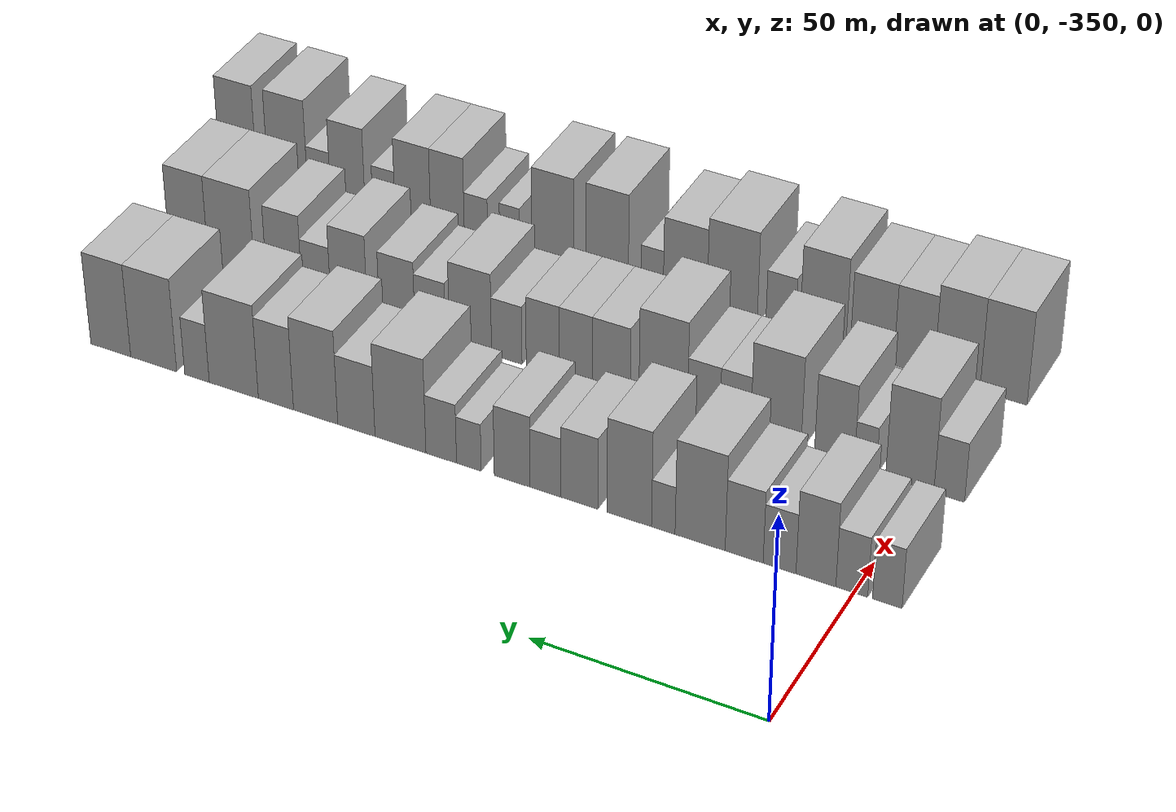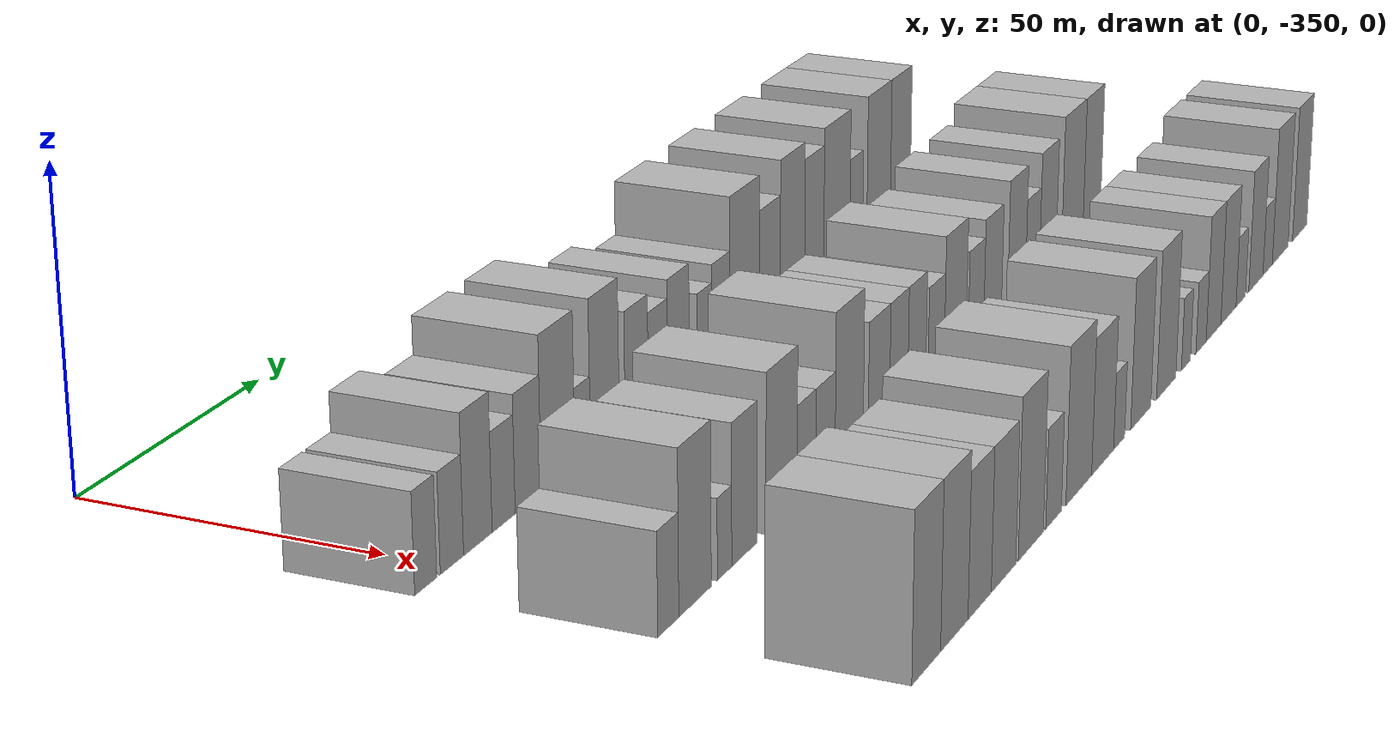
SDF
<sdf version="1.6">
 <world name="default">
  <model name="building_1">
   <static>1</static>
   <pose>50.0000 -356.9173 0 0.000000 0.000000 0.000000</pose>
   <link name="link">
    <pose>0 0 7.50 0 0 0</pose>
    <collision name="collision"><geometry><box><size>20.0000 6.1653 15.0000</size></box></geometry></collision>
    <visual name="visual">
     <cast_shadows>0</cast_shadows>
     <geometry><box><size>20.0000 6.1653 15.0000</size></box></geometry>
     <material>
      <script>
       <uri>model://HANNAS_wall/materials/scripts</uri>
       <uri>model://HANNAS_wall/materials/textures</uri>
       <name>vrc/HANNAS_wall</name>
      </script>
     </material>
    </visual>
   </link>
  </model>
  <model name="building_2">
   <static>1</static>
   <pose>50.0000 -349.4881 0 0.000000 0.000000 0.000000</pose>
   <link name="link">
    <pose>0 0 7.50 0 0 0</pose>
    <collision name="collision"><geometry><box><size>20.0000 6.6932 15.0000</size></box></geometry></collision>
    <visual name="visual">
     <cast_shadows>0</cast_shadows>
     <geometry><box><size>20.0000 6.6932 15.0000</size></box></geometry>
     <material>
      <script>
       <uri>model://HANNAS_wall/materials/scripts</uri>
       <uri>model://HANNAS_wall/materials/textures</uri>
       <name>vrc/HANNAS_wall</name>
      </script>
     </material>
    </visual>
   </link>
  </model>
  <model name="building_3">
   <static>1</static>
   <pose>50.0000 -341.9118 0 0.000000 0.000000 0.000000</pose>
   <link name="link">
    <pose>0 0 10.50 0 0 0</pose>
    <collision name="collision"><geometry><box><size>20.0000 8.4594 21.0000</size></box></geometry></collision>
    <visual name="visual">
     <cast_shadows>0</cast_shadows>
     <geometry><box><size>20.0000 8.4594 21.0000</size></box></geometry>
     <material>
      <script>
       <uri>model://HANNAS_wall/materials/scripts</uri>
       <uri>model://HANNAS_wall/materials/textures</uri>
       <name>vrc/HANNAS_wall</name>
      </script>
     </material>
    </visual>
   </link>
  </model>
  <model name="building_4">
   <static>1</static>
   <pose>50.0000 -334.1779 0 0.000000 0.000000 0.000000</pose>
   <link name="link">
    <pose>0 0 7.50 0 0 0</pose>
    <collision name="collision"><geometry><box><size>20.0000 7.0084 15.0000</size></box></geometry></collision>
    <visual name="visual">
     <cast_shadows>0</cast_shadows>
     <geometry><box><size>20.0000 7.0084 15.0000</size></box></geometry>
     <material>
      <script>
       <uri>model://HANNAS_wall/materials/scripts</uri>
       <uri>model://HANNAS_wall/materials/textures</uri>
       <name>vrc/HANNAS_wall</name>
      </script>
     </material>
    </visual>
   </link>
  </model>
  <model name="building_5">
   <static>1</static>
   <pose>50.0000 -326.5904 0 0.000000 0.000000 0.000000</pose>
   <link name="link">
    <pose>0 0 9.00 0 0 0</pose>
    <collision name="collision"><geometry><box><size>20.0000 8.1666 18.0000</size></box></geometry></collision>
    <visual name="visual">
     <cast_shadows>0</cast_shadows>
     <geometry><box><size>20.0000 8.1666 18.0000</size></box></geometry>
     <material>
      <script>
       <uri>model://HANNAS_wall/materials/scripts</uri>
       <uri>model://HANNAS_wall/materials/textures</uri>
       <name>vrc/HANNAS_wall</name>
      </script>
     </material>
    </visual>
   </link>
  </model>
  <model name="building_6">
   <static>1</static>
   <pose>50.0000 -317.0512 0 0.000000 0.000000 0.000000</pose>
   <link name="link">
    <pose>0 0 12.00 0 0 0</pose>
    <collision name="collision"><geometry><box><size>20.0000 10.9119 24.0000</size></box></geometry></collision>
    <visual name="visual">
     <cast_shadows>0</cast_shadows>
     <geometry><box><size>20.0000 10.9119 24.0000</size></box></geometry>
     <material>
      <script>
       <uri>model://HANNAS_wall/materials/scripts</uri>
       <uri>model://HANNAS_wall/materials/textures</uri>
       <name>vrc/HANNAS_wall</name>
      </script>
     </material>
    </visual>
   </link>
  </model>
  <model name="building_7">
   <static>1</static>
   <pose>50.0000 -309.0127 0 0.000000 0.000000 0.000000</pose>
   <link name="link">
    <pose>0 0 6.00 0 0 0</pose>
    <collision name="collision"><geometry><box><size>20.0000 5.1651 12.0000</size></box></geometry></collision>
    <visual name="visual">
     <cast_shadows>0</cast_shadows>
     <geometry><box><size>20.0000 5.1651 12.0000</size></box></geometry>
     <material>
      <script>
       <uri>model://HANNAS_wall/materials/scripts</uri>
       <uri>model://HANNAS_wall/materials/textures</uri>
       <name>vrc/HANNAS_wall</name>
      </script>
     </material>
    </visual>
   </link>
  </model>
  <model name="building_8">
   <static>1</static>
   <pose>50.0000 -301.5000 0 0.000000 0.000000 0.000000</pose>
   <link name="link">
    <pose>0 0 12.00 0 0 0</pose>
    <collision name="collision"><geometry><box><size>20.0000 9.8603 24.0000</size></box></geometry></collision>
    <visual name="visual">
     <cast_shadows>0</cast_shadows>
     <geometry><box><size>20.0000 9.8603 24.0000</size></box></geometry>
     <material>
      <script>
       <uri>model://HANNAS_wall/materials/scripts</uri>
       <uri>model://HANNAS_wall/materials/textures</uri>
       <name>vrc/HANNAS_wall</name>
      </script>
     </material>
    </visual>
   </link>
  </model>
  <model name="building_9">
   <static>1</static>
   <pose>50.0000 -290.4435 0 0.000000 0.000000 0.000000</pose>
   <link name="link">
    <pose>0 0 9.00 0 0 0</pose>
    <collision name="collision"><geometry><box><size>20.0000 8.2526 18.0000</size></box></geometry></collision>
    <visual name="visual">
     <cast_shadows>0</cast_shadows>
     <geometry><box><size>20.0000 8.2526 18.0000</size></box></geometry>
     <material>
      <script>
       <uri>model://HANNAS_wall/materials/scripts</uri>
       <uri>model://HANNAS_wall/materials/textures</uri>
       <name>vrc/HANNAS_wall</name>
      </script>
     </material>
    </visual>
   </link>
  </model>
  <model name="building_10">
   <static>1</static>
   <pose>50.0000 -282.8231 0 0.000000 0.000000 0.000000</pose>
   <link name="link">
    <pose>0 0 7.50 0 0 0</pose>
    <collision name="collision"><geometry><box><size>20.0000 6.9883 15.0000</size></box></geometry></collision>
    <visual name="visual">
     <cast_shadows>0</cast_shadows>
     <geometry><box><size>20.0000 6.9883 15.0000</size></box></geometry>
     <material>
      <script>
       <uri>model://HANNAS_wall/materials/scripts</uri>
       <uri>model://HANNAS_wall/materials/textures</uri>
       <name>vrc/HANNAS_wall</name>
      </script>
     </material>
    </visual>
   </link>
  </model>
  <model name="building_11">
   <static>1</static>
   <pose>50.0000 -275.2648 0 0.000000 0.000000 0.000000</pose>
   <link name="link">
    <pose>0 0 9.00 0 0 0</pose>
    <collision name="collision"><geometry><box><size>20.0000 8.1283 18.0000</size></box></geometry></collision>
    <visual name="visual">
     <cast_shadows>0</cast_shadows>
     <geometry><box><size>20.0000 8.1283 18.0000</size></box></geometry>
     <material>
      <script>
       <uri>model://HANNAS_wall/materials/scripts</uri>
       <uri>model://HANNAS_wall/materials/textures</uri>
       <name>vrc/HANNAS_wall</name>
      </script>
     </material>
    </visual>
   </link>
  </model>
  <model name="building_12">
   <static>1</static>
   <pose>50.0000 -265.3657 0 0.000000 0.000000 0.000000</pose>
   <link name="link">
    <pose>0 0 6.00 0 0 0</pose>
    <collision name="collision"><geometry><box><size>20.0000 5.6699 12.0000</size></box></geometry></collision>
    <visual name="visual">
     <cast_shadows>0</cast_shadows>
     <geometry><box><size>20.0000 5.6699 12.0000</size></box></geometry>
     <material>
      <script>
       <uri>model://HANNAS_wall/materials/scripts</uri>
       <uri>model://HANNAS_wall/materials/textures</uri>
       <name>vrc/HANNAS_wall</name>
      </script>
     </material>
    </visual>
   </link>
  </model>
  <model name="building_13">
   <static>1</static>
   <pose>50.0000 -258.9882 0 0.000000 0.000000 0.000000</pose>
   <link name="link">
    <pose>0 0 7.50 0 0 0</pose>
    <collision name="collision"><geometry><box><size>20.0000 7.0851 15.0000</size></box></geometry></collision>
    <visual name="visual">
     <cast_shadows>0</cast_shadows>
     <geometry><box><size>20.0000 7.0851 15.0000</size></box></geometry>
     <material>
      <script>
       <uri>model://HANNAS_wall/materials/scripts</uri>
       <uri>model://HANNAS_wall/materials/textures</uri>
       <name>vrc/HANNAS_wall</name>
      </script>
     </material>
    </visual>
   </link>
  </model>
  <model name="building_14">
   <static>1</static>
   <pose>50.0000 -249.4992 0 0.000000 0.000000 0.000000</pose>
   <link name="link">
    <pose>0 0 12.00 0 0 0</pose>
    <collision name="collision"><geometry><box><size>20.0000 11.8929 24.0000</size></box></geometry></collision>
    <visual name="visual">
     <cast_shadows>0</cast_shadows>
     <geometry><box><size>20.0000 11.8929 24.0000</size></box></geometry>
     <material>
      <script>
       <uri>model://HANNAS_wall/materials/scripts</uri>
       <uri>model://HANNAS_wall/materials/textures</uri>
       <name>vrc/HANNAS_wall</name>
      </script>
     </material>
    </visual>
   </link>
  </model>
  <model name="building_15">
   <static>1</static>
   <pose>50.0000 -239.1527 0 0.000000 0.000000 0.000000</pose>
   <link name="link">
    <pose>0 0 9.00 0 0 0</pose>
    <collision name="collision"><geometry><box><size>20.0000 8.8000 18.0000</size></box></geometry></collision>
    <visual name="visual">
     <cast_shadows>0</cast_shadows>
     <geometry><box><size>20.0000 8.8000 18.0000</size></box></geometry>
     <material>
      <script>
       <uri>model://HANNAS_wall/materials/scripts</uri>
       <uri>model://HANNAS_wall/materials/textures</uri>
       <name>vrc/HANNAS_wall</name>
      </script>
     </material>
    </visual>
   </link>
  </model>
  <model name="building_16">
   <static>1</static>
   <pose>50.0000 -229.4747 0 0.000000 0.000000 0.000000</pose>
   <link name="link">
    <pose>0 0 12.00 0 0 0</pose>
    <collision name="collision"><geometry><box><size>20.0000 10.5560 24.0000</size></box></geometry></collision>
    <visual name="visual">
     <cast_shadows>0</cast_shadows>
     <geometry><box><size>20.0000 10.5560 24.0000</size></box></geometry>
     <material>
      <script>
       <uri>model://HANNAS_wall/materials/scripts</uri>
       <uri>model://HANNAS_wall/materials/textures</uri>
       <name>vrc/HANNAS_wall</name>
      </script>
     </material>
    </visual>
   </link>
  </model>
  <model name="building_17">
   <static>1</static>
   <pose>50.0000 -219.9631 0 0.000000 0.000000 0.000000</pose>
   <link name="link">
    <pose>0 0 10.50 0 0 0</pose>
    <collision name="collision"><geometry><box><size>20.0000 8.4672 21.0000</size></box></geometry></collision>
    <visual name="visual">
     <cast_shadows>0</cast_shadows>
     <geometry><box><size>20.0000 8.4672 21.0000</size></box></geometry>
     <material>
      <script>
       <uri>model://HANNAS_wall/materials/scripts</uri>
       <uri>model://HANNAS_wall/materials/textures</uri>
       <name>vrc/HANNAS_wall</name>
      </script>
     </material>
    </visual>
   </link>
  </model>
  <model name="building_18">
   <static>1</static>
   <pose>50.0000 -209.7515 0 0.000000 0.000000 0.000000</pose>
   <link name="link">
    <pose>0 0 12.00 0 0 0</pose>
    <collision name="collision"><geometry><box><size>20.0000 11.9559 24.0000</size></box></geometry></collision>
    <visual name="visual">
     <cast_shadows>0</cast_shadows>
     <geometry><box><size>20.0000 11.9559 24.0000</size></box></geometry>
     <material>
      <script>
       <uri>model://HANNAS_wall/materials/scripts</uri>
       <uri>model://HANNAS_wall/materials/textures</uri>
       <name>vrc/HANNAS_wall</name>
      </script>
     </material>
    </visual>
   </link>
  </model>
  <model name="building_19">
   <static>1</static>
   <pose>50.0000 -200.7639 0 0.000000 0.000000 0.000000</pose>
   <link name="link">
    <pose>0 0 7.50 0 0 0</pose>
    <collision name="collision"><geometry><box><size>20.0000 6.0193 15.0000</size></box></geometry></collision>
    <visual name="visual">
     <cast_shadows>0</cast_shadows>
     <geometry><box><size>20.0000 6.0193 15.0000</size></box></geometry>
     <material>
      <script>
       <uri>model://HANNAS_wall/materials/scripts</uri>
       <uri>model://HANNAS_wall/materials/textures</uri>
       <name>vrc/HANNAS_wall</name>
      </script>
     </material>
    </visual>
   </link>
  </model>
  <model name="building_20">
   <static>1</static>
   <pose>50.0000 -190.0503 0 0.000000 0.000000 0.000000</pose>
   <link name="link">
    <pose>0 0 12.00 0 0 0</pose>
    <collision name="collision"><geometry><box><size>20.0000 11.4079 24.0000</size></box></geometry></collision>
    <visual name="visual">
     <cast_shadows>0</cast_shadows>
     <geometry><box><size>20.0000 11.4079 24.0000</size></box></geometry>
     <material>
      <script>
       <uri>model://HANNAS_wall/materials/scripts</uri>
       <uri>model://HANNAS_wall/materials/textures</uri>
       <name>vrc/HANNAS_wall</name>
      </script>
     </material>
    </visual>
   </link>
  </model>
  <model name="building_21">
   <static>1</static>
   <pose>50.0000 -179.3516 0 0.000000 0.000000 0.000000</pose>
   <link name="link">
    <pose>0 0 12.00 0 0 0</pose>
    <collision name="collision"><geometry><box><size>20.0000 9.9894 24.0000</size></box></geometry></collision>
    <visual name="visual">
     <cast_shadows>0</cast_shadows>
     <geometry><box><size>20.0000 9.9894 24.0000</size></box></geometry>
     <material>
      <script>
       <uri>model://HANNAS_wall/materials/scripts</uri>
       <uri>model://HANNAS_wall/materials/textures</uri>
       <name>vrc/HANNAS_wall</name>
      </script>
     </material>
    </visual>
   </link>
  </model>
  <model name="building_82">
   <static>1</static>
   <pose>85.0000 -355.7033 0 0.000000 0.000000 0.000000</pose>
   <link name="link">
    <pose>0 0 7.50 0 0 0</pose>
    <collision name="collision"><geometry><box><size>20.0000 6.5934 15.0000</size></box></geometry></collision>
    <visual name="visual">
     <cast_shadows>0</cast_shadows>
     <geometry><box><size>20.0000 6.5934 15.0000</size></box></geometry>
     <material>
      <script>
       <uri>model://HANNAS_wall/materials/scripts</uri>
       <uri>model://HANNAS_wall/materials/textures</uri>
       <name>vrc/HANNAS_wall</name>
      </script>
     </material>
    </visual>
   </link>
  </model>
  <model name="building_83">
   <static>1</static>
   <pose>85.0000 -347.1661 0 0.000000 0.000000 0.000000</pose>
   <link name="link">
    <pose>0 0 12.00 0 0 0</pose>
    <collision name="collision"><geometry><box><size>20.0000 10.4810 24.0000</size></box></geometry></collision>
    <visual name="visual">
     <cast_shadows>0</cast_shadows>
     <geometry><box><size>20.0000 10.4810 24.0000</size></box></geometry>
     <material>
      <script>
       <uri>model://HANNAS_wall/materials/scripts</uri>
       <uri>model://HANNAS_wall/materials/textures</uri>
       <name>vrc/HANNAS_wall</name>
      </script>
     </material>
    </visual>
   </link>
  </model>
  <model name="building_84">
   <static>1</static>
   <pose>85.0000 -337.4993 0 0.000000 0.000000 0.000000</pose>
   <link name="link">
    <pose>0 0 6.00 0 0 0</pose>
    <collision name="collision"><geometry><box><size>20.0000 4.8526 12.0000</size></box></geometry></collision>
    <visual name="visual">
     <cast_shadows>0</cast_shadows>
     <geometry><box><size>20.0000 4.8526 12.0000</size></box></geometry>
     <material>
      <script>
       <uri>model://HANNAS_wall/materials/scripts</uri>
       <uri>model://HANNAS_wall/materials/textures</uri>
       <name>vrc/HANNAS_wall</name>
      </script>
     </material>
    </visual>
   </link>
  </model>
  <model name="building_85">
   <static>1</static>
   <pose>85.0000 -330.6772 0 0.000000 0.000000 0.000000</pose>
   <link name="link">
    <pose>0 0 10.50 0 0 0</pose>
    <collision name="collision"><geometry><box><size>20.0000 8.7916 21.0000</size></box></geometry></collision>
    <visual name="visual">
     <cast_shadows>0</cast_shadows>
     <geometry><box><size>20.0000 8.7916 21.0000</size></box></geometry>
     <material>
      <script>
       <uri>model://HANNAS_wall/materials/scripts</uri>
       <uri>model://HANNAS_wall/materials/textures</uri>
       <name>vrc/HANNAS_wall</name>
      </script>
     </material>
    </visual>
   </link>
  </model>
  <model name="building_86">
   <static>1</static>
   <pose>85.0000 -317.6408 0 0.000000 0.000000 0.000000</pose>
   <link name="link">
    <pose>0 0 12.00 0 0 0</pose>
    <collision name="collision"><geometry><box><size>20.0000 11.2812 24.0000</size></box></geometry></collision>
    <visual name="visual">
     <cast_shadows>0</cast_shadows>
     <geometry><box><size>20.0000 11.2812 24.0000</size></box></geometry>
     <material>
      <script>
       <uri>model://HANNAS_wall/materials/scripts</uri>
       <uri>model://HANNAS_wall/materials/textures</uri>
       <name>vrc/HANNAS_wall</name>
      </script>
     </material>
    </visual>
   </link>
  </model>
  <model name="building_87">
   <static>1</static>
   <pose>85.0000 -308.5478 0 0.000000 0.000000 0.000000</pose>
   <link name="link">
    <pose>0 0 7.50 0 0 0</pose>
    <collision name="collision"><geometry><box><size>20.0000 6.9048 15.0000</size></box></geometry></collision>
    <visual name="visual">
     <cast_shadows>0</cast_shadows>
     <geometry><box><size>20.0000 6.9048 15.0000</size></box></geometry>
     <material>
      <script>
       <uri>model://HANNAS_wall/materials/scripts</uri>
       <uri>model://HANNAS_wall/materials/textures</uri>
       <name>vrc/HANNAS_wall</name>
      </script>
     </material>
    </visual>
   </link>
  </model>
  <model name="building_88">
   <static>1</static>
   <pose>85.0000 -301.3884 0 0.000000 0.000000 0.000000</pose>
   <link name="link">
    <pose>0 0 7.50 0 0 0</pose>
    <collision name="collision"><geometry><box><size>20.0000 7.4140 15.0000</size></box></geometry></collision>
    <visual name="visual">
     <cast_shadows>0</cast_shadows>
     <geometry><box><size>20.0000 7.4140 15.0000</size></box></geometry>
     <material>
      <script>
       <uri>model://HANNAS_wall/materials/scripts</uri>
       <uri>model://HANNAS_wall/materials/textures</uri>
       <name>vrc/HANNAS_wall</name>
      </script>
     </material>
    </visual>
   </link>
  </model>
  <model name="building_89">
   <static>1</static>
   <pose>85.0000 -292.1258 0 0.000000 0.000000 0.000000</pose>
   <link name="link">
    <pose>0 0 12.00 0 0 0</pose>
    <collision name="collision"><geometry><box><size>20.0000 11.1113 24.0000</size></box></geometry></collision>
    <visual name="visual">
     <cast_shadows>0</cast_shadows>
     <geometry><box><size>20.0000 11.1113 24.0000</size></box></geometry>
     <material>
      <script>
       <uri>model://HANNAS_wall/materials/scripts</uri>
       <uri>model://HANNAS_wall/materials/textures</uri>
       <name>vrc/HANNAS_wall</name>
      </script>
     </material>
    </visual>
   </link>
  </model>
  <model name="building_90">
   <static>1</static>
   <pose>85.0000 -280.1708 0 0.000000 0.000000 0.000000</pose>
   <link name="link">
    <pose>0 0 9.00 0 0 0</pose>
    <collision name="collision"><geometry><box><size>20.0000 8.7986 18.0000</size></box></geometry></collision>
    <visual name="visual">
     <cast_shadows>0</cast_shadows>
     <geometry><box><size>20.0000 8.7986 18.0000</size></box></geometry>
     <material>
      <script>
       <uri>model://HANNAS_wall/materials/scripts</uri>
       <uri>model://HANNAS_wall/materials/textures</uri>
       <name>vrc/HANNAS_wall</name>
      </script>
     </material>
    </visual>
   </link>
  </model>
  <model name="building_91">
   <static>1</static>
   <pose>85.0000 -271.9195 0 0.000000 0.000000 0.000000</pose>
   <link name="link">
    <pose>0 0 9.00 0 0 0</pose>
    <collision name="collision"><geometry><box><size>20.0000 7.7040 18.0000</size></box></geometry></collision>
    <visual name="visual">
     <cast_shadows>0</cast_shadows>
     <geometry><box><size>20.0000 7.7040 18.0000</size></box></geometry>
     <material>
      <script>
       <uri>model://HANNAS_wall/materials/scripts</uri>
       <uri>model://HANNAS_wall/materials/textures</uri>
       <name>vrc/HANNAS_wall</name>
      </script>
     </material>
    </visual>
   </link>
  </model>
  <model name="building_92">
   <static>1</static>
   <pose>85.0000 -264.1524 0 0.000000 0.000000 0.000000</pose>
   <link name="link">
    <pose>0 0 9.00 0 0 0</pose>
    <collision name="collision"><geometry><box><size>20.0000 7.8300 18.0000</size></box></geometry></collision>
    <visual name="visual">
     <cast_shadows>0</cast_shadows>
     <geometry><box><size>20.0000 7.8300 18.0000</size></box></geometry>
     <material>
      <script>
       <uri>model://HANNAS_wall/materials/scripts</uri>
       <uri>model://HANNAS_wall/materials/textures</uri>
       <name>vrc/HANNAS_wall</name>
      </script>
     </material>
    </visual>
   </link>
  </model>
  <model name="building_93">
   <static>1</static>
   <pose>85.0000 -255.6110 0 0.000000 0.000000 0.000000</pose>
   <link name="link">
    <pose>0 0 7.50 0 0 0</pose>
    <collision name="collision"><geometry><box><size>20.0000 7.2527 15.0000</size></box></geometry></collision>
    <visual name="visual">
     <cast_shadows>0</cast_shadows>
     <geometry><box><size>20.0000 7.2527 15.0000</size></box></geometry>
     <material>
      <script>
       <uri>model://HANNAS_wall/materials/scripts</uri>
       <uri>model://HANNAS_wall/materials/textures</uri>
       <name>vrc/HANNAS_wall</name>
      </script>
     </material>
    </visual>
   </link>
  </model>
  <model name="building_94">
   <static>1</static>
   <pose>85.0000 -246.9464 0 0.000000 0.000000 0.000000</pose>
   <link name="link">
    <pose>0 0 10.50 0 0 0</pose>
    <collision name="collision"><geometry><box><size>20.0000 10.0765 21.0000</size></box></geometry></collision>
    <visual name="visual">
     <cast_shadows>0</cast_shadows>
     <geometry><box><size>20.0000 10.0765 21.0000</size></box></geometry>
     <material>
      <script>
       <uri>model://HANNAS_wall/materials/scripts</uri>
       <uri>model://HANNAS_wall/materials/textures</uri>
       <name>vrc/HANNAS_wall</name>
      </script>
     </material>
    </visual>
   </link>
  </model>
  <model name="building_95">
   <static>1</static>
   <pose>85.0000 -237.2110 0 0.000000 0.000000 0.000000</pose>
   <link name="link">
    <pose>0 0 7.50 0 0 0</pose>
    <collision name="collision"><geometry><box><size>20.0000 7.3944 15.0000</size></box></geometry></collision>
    <visual name="visual">
     <cast_shadows>0</cast_shadows>
     <geometry><box><size>20.0000 7.3944 15.0000</size></box></geometry>
     <material>
      <script>
       <uri>model://HANNAS_wall/materials/scripts</uri>
       <uri>model://HANNAS_wall/materials/textures</uri>
       <name>vrc/HANNAS_wall</name>
      </script>
     </material>
    </visual>
   </link>
  </model>
  <model name="building_96">
   <static>1</static>
   <pose>85.0000 -229.1896 0 0.000000 0.000000 0.000000</pose>
   <link name="link">
    <pose>0 0 9.00 0 0 0</pose>
    <collision name="collision"><geometry><box><size>20.0000 8.6484 18.0000</size></box></geometry></collision>
    <visual name="visual">
     <cast_shadows>0</cast_shadows>
     <geometry><box><size>20.0000 8.6484 18.0000</size></box></geometry>
     <material>
      <script>
       <uri>model://HANNAS_wall/materials/scripts</uri>
       <uri>model://HANNAS_wall/materials/textures</uri>
       <name>vrc/HANNAS_wall</name>
      </script>
     </material>
    </visual>
   </link>
  </model>
  <model name="building_97">
   <static>1</static>
   <pose>85.0000 -217.3360 0 0.000000 0.000000 0.000000</pose>
   <link name="link">
    <pose>0 0 10.50 0 0 0</pose>
    <collision name="collision"><geometry><box><size>20.0000 9.0589 21.0000</size></box></geometry></collision>
    <visual name="visual">
     <cast_shadows>0</cast_shadows>
     <geometry><box><size>20.0000 9.0589 21.0000</size></box></geometry>
     <material>
      <script>
       <uri>model://HANNAS_wall/materials/scripts</uri>
       <uri>model://HANNAS_wall/materials/textures</uri>
       <name>vrc/HANNAS_wall</name>
      </script>
     </material>
    </visual>
   </link>
  </model>
  <model name="building_98">
   <static>1</static>
   <pose>85.0000 -209.2326 0 0.000000 0.000000 0.000000</pose>
   <link name="link">
    <pose>0 0 7.50 0 0 0</pose>
    <collision name="collision"><geometry><box><size>20.0000 7.1479 15.0000</size></box></geometry></collision>
    <visual name="visual">
     <cast_shadows>0</cast_shadows>
     <geometry><box><size>20.0000 7.1479 15.0000</size></box></geometry>
     <material>
      <script>
       <uri>model://HANNAS_wall/materials/scripts</uri>
       <uri>model://HANNAS_wall/materials/textures</uri>
       <name>vrc/HANNAS_wall</name>
      </script>
     </material>
    </visual>
   </link>
  </model>
  <model name="building_99">
   <static>1</static>
   <pose>85.0000 -201.2149 0 0.000000 0.000000 0.000000</pose>
   <link name="link">
    <pose>0 0 10.50 0 0 0</pose>
    <collision name="collision"><geometry><box><size>20.0000 8.8876 21.0000</size></box></geometry></collision>
    <visual name="visual">
     <cast_shadows>0</cast_shadows>
     <geometry><box><size>20.0000 8.8876 21.0000</size></box></geometry>
     <material>
      <script>
       <uri>model://HANNAS_wall/materials/scripts</uri>
       <uri>model://HANNAS_wall/materials/textures</uri>
       <name>vrc/HANNAS_wall</name>
      </script>
     </material>
    </visual>
   </link>
  </model>
  <model name="building_100">
   <static>1</static>
   <pose>85.0000 -187.8753 0 0.000000 0.000000 0.000000</pose>
   <link name="link">
    <pose>0 0 12.00 0 0 0</pose>
    <collision name="collision"><geometry><box><size>20.0000 11.7916 24.0000</size></box></geometry></collision>
    <visual name="visual">
     <cast_shadows>0</cast_shadows>
     <geometry><box><size>20.0000 11.7916 24.0000</size></box></geometry>
     <material>
      <script>
       <uri>model://HANNAS_wall/materials/scripts</uri>
       <uri>model://HANNAS_wall/materials/textures</uri>
       <name>vrc/HANNAS_wall</name>
      </script>
     </material>
    </visual>
   </link>
  </model>
  <model name="building_101">
   <static>1</static>
   <pose>85.0000 -177.0043 0 0.000000 0.000000 0.000000</pose>
   <link name="link">
    <pose>0 0 12.00 0 0 0</pose>
    <collision name="collision"><geometry><box><size>20.0000 9.9503 24.0000</size></box></geometry></collision>
    <visual name="visual">
     <cast_shadows>0</cast_shadows>
     <geometry><box><size>20.0000 9.9503 24.0000</size></box></geometry>
     <material>
      <script>
       <uri>model://HANNAS_wall/materials/scripts</uri>
       <uri>model://HANNAS_wall/materials/textures</uri>
       <name>vrc/HANNAS_wall</name>
      </script>
     </material>
    </visual>
   </link>
  </model>
  <model name="building_162">
   <static>1</static>
   <pose>120.0000 -353.7766 0 0.000000 0.000000 0.000000</pose>
   <link name="link">
    <pose>0 0 12.00 0 0 0</pose>
    <collision name="collision"><geometry><box><size>20.0000 10.4467 24.0000</size></box></geometry></collision>
    <visual name="visual">
     <cast_shadows>0</cast_shadows>
     <geometry><box><size>20.0000 10.4467 24.0000</size></box></geometry>
     <material>
      <script>
       <uri>model://HANNAS_wall/materials/scripts</uri>
       <uri>model://HANNAS_wall/materials/textures</uri>
       <name>vrc/HANNAS_wall</name>
      </script>
     </material>
    </visual>
   </link>
  </model>
  <model name="building_163">
   <static>1</static>
   <pose>120.0000 -343.3911 0 0.000000 0.000000 0.000000</pose>
   <link name="link">
    <pose>0 0 12.00 0 0 0</pose>
    <collision name="collision"><geometry><box><size>20.0000 10.3244 24.0000</size></box></geometry></collision>
    <visual name="visual">
     <cast_shadows>0</cast_shadows>
     <geometry><box><size>20.0000 10.3244 24.0000</size></box></geometry>
     <material>
      <script>
       <uri>model://HANNAS_wall/materials/scripts</uri>
       <uri>model://HANNAS_wall/materials/textures</uri>
       <name>vrc/HANNAS_wall</name>
      </script>
     </material>
    </visual>
   </link>
  </model>
  <model name="building_164">
   <static>1</static>
   <pose>120.0000 -333.6797 0 0.000000 0.000000 0.000000</pose>
   <link name="link">
    <pose>0 0 10.50 0 0 0</pose>
    <collision name="collision"><geometry><box><size>20.0000 9.0984 21.0000</size></box></geometry></collision>
    <visual name="visual">
     <cast_shadows>0</cast_shadows>
     <geometry><box><size>20.0000 9.0984 21.0000</size></box></geometry>
     <material>
      <script>
       <uri>model://HANNAS_wall/materials/scripts</uri>
       <uri>model://HANNAS_wall/materials/textures</uri>
       <name>vrc/HANNAS_wall</name>
      </script>
     </material>
    </visual>
   </link>
  </model>
  <model name="building_165">
   <static>1</static>
   <pose>120.0000 -324.1474 0 0.000000 0.000000 0.000000</pose>
   <link name="link">
    <pose>0 0 10.50 0 0 0</pose>
    <collision name="collision"><geometry><box><size>20.0000 9.9662 21.0000</size></box></geometry></collision>
    <visual name="visual">
     <cast_shadows>0</cast_shadows>
     <geometry><box><size>20.0000 9.9662 21.0000</size></box></geometry>
     <material>
      <script>
       <uri>model://HANNAS_wall/materials/scripts</uri>
       <uri>model://HANNAS_wall/materials/textures</uri>
       <name>vrc/HANNAS_wall</name>
      </script>
     </material>
    </visual>
   </link>
  </model>
  <model name="building_166">
   <static>1</static>
   <pose>120.0000 -312.8351 0 0.000000 0.000000 0.000000</pose>
   <link name="link">
    <pose>0 0 12.00 0 0 0</pose>
    <collision name="collision"><geometry><box><size>20.0000 10.6583 24.0000</size></box></geometry></collision>
    <visual name="visual">
     <cast_shadows>0</cast_shadows>
     <geometry><box><size>20.0000 10.6583 24.0000</size></box></geometry>
     <material>
      <script>
       <uri>model://HANNAS_wall/materials/scripts</uri>
       <uri>model://HANNAS_wall/materials/textures</uri>
       <name>vrc/HANNAS_wall</name>
      </script>
     </material>
    </visual>
   </link>
  </model>
  <model name="building_167">
   <static>1</static>
   <pose>120.0000 -303.0627 0 0.000000 0.000000 0.000000</pose>
   <link name="link">
    <pose>0 0 7.50 0 0 0</pose>
    <collision name="collision"><geometry><box><size>20.0000 6.8867 15.0000</size></box></geometry></collision>
    <visual name="visual">
     <cast_shadows>0</cast_shadows>
     <geometry><box><size>20.0000 6.8867 15.0000</size></box></geometry>
     <material>
      <script>
       <uri>model://HANNAS_wall/materials/scripts</uri>
       <uri>model://HANNAS_wall/materials/textures</uri>
       <name>vrc/HANNAS_wall</name>
      </script>
     </material>
    </visual>
   </link>
  </model>
  <model name="building_168">
   <static>1</static>
   <pose>120.0000 -291.7036 0 0.000000 0.000000 0.000000</pose>
   <link name="link">
    <pose>0 0 12.00 0 0 0</pose>
    <collision name="collision"><geometry><box><size>20.0000 11.8315 24.0000</size></box></geometry></collision>
    <visual name="visual">
     <cast_shadows>0</cast_shadows>
     <geometry><box><size>20.0000 11.8315 24.0000</size></box></geometry>
     <material>
      <script>
       <uri>model://HANNAS_wall/materials/scripts</uri>
       <uri>model://HANNAS_wall/materials/textures</uri>
       <name>vrc/HANNAS_wall</name>
      </script>
     </material>
    </visual>
   </link>
  </model>
  <model name="building_169">
   <static>1</static>
   <pose>120.0000 -280.5714 0 0.000000 0.000000 0.000000</pose>
   <link name="link">
    <pose>0 0 10.50 0 0 0</pose>
    <collision name="collision"><geometry><box><size>20.0000 10.4330 21.0000</size></box></geometry></collision>
    <visual name="visual">
     <cast_shadows>0</cast_shadows>
     <geometry><box><size>20.0000 10.4330 21.0000</size></box></geometry>
     <material>
      <script>
       <uri>model://HANNAS_wall/materials/scripts</uri>
       <uri>model://HANNAS_wall/materials/textures</uri>
       <name>vrc/HANNAS_wall</name>
      </script>
     </material>
    </visual>
   </link>
  </model>
  <model name="building_170">
   <static>1</static>
   <pose>120.0000 -272.6534 0 0.000000 0.000000 0.000000</pose>
   <link name="link">
    <pose>0 0 6.00 0 0 0</pose>
    <collision name="collision"><geometry><box><size>20.0000 5.4029 12.0000</size></box></geometry></collision>
    <visual name="visual">
     <cast_shadows>0</cast_shadows>
     <geometry><box><size>20.0000 5.4029 12.0000</size></box></geometry>
     <material>
      <script>
       <uri>model://HANNAS_wall/materials/scripts</uri>
       <uri>model://HANNAS_wall/materials/textures</uri>
       <name>vrc/HANNAS_wall</name>
      </script>
     </material>
    </visual>
   </link>
  </model>
  <model name="building_171">
   <static>1</static>
   <pose>120.0000 -261.8247 0 0.000000 0.000000 0.000000</pose>
   <link name="link">
    <pose>0 0 12.00 0 0 0</pose>
    <collision name="collision"><geometry><box><size>20.0000 10.2546 24.0000</size></box></geometry></collision>
    <visual name="visual">
     <cast_shadows>0</cast_shadows>
     <geometry><box><size>20.0000 10.2546 24.0000</size></box></geometry>
     <material>
      <script>
       <uri>model://HANNAS_wall/materials/scripts</uri>
       <uri>model://HANNAS_wall/materials/textures</uri>
       <name>vrc/HANNAS_wall</name>
      </script>
     </material>
    </visual>
   </link>
  </model>
  <model name="building_172">
   <static>1</static>
   <pose>120.0000 -248.5598 0 0.000000 0.000000 0.000000</pose>
   <link name="link">
    <pose>0 0 12.00 0 0 0</pose>
    <collision name="collision"><geometry><box><size>20.0000 10.2753 24.0000</size></box></geometry></collision>
    <visual name="visual">
     <cast_shadows>0</cast_shadows>
     <geometry><box><size>20.0000 10.2753 24.0000</size></box></geometry>
     <material>
      <script>
       <uri>model://HANNAS_wall/materials/scripts</uri>
       <uri>model://HANNAS_wall/materials/textures</uri>
       <name>vrc/HANNAS_wall</name>
      </script>
     </material>
    </visual>
   </link>
  </model>
  <model name="building_173">
   <static>1</static>
   <pose>120.0000 -237.9285 0 0.000000 0.000000 0.000000</pose>
   <link name="link">
    <pose>0 0 6.00 0 0 0</pose>
    <collision name="collision"><geometry><box><size>20.0000 4.9872 12.0000</size></box></geometry></collision>
    <visual name="visual">
     <cast_shadows>0</cast_shadows>
     <geometry><box><size>20.0000 4.9872 12.0000</size></box></geometry>
     <material>
      <script>
       <uri>model://HANNAS_wall/materials/scripts</uri>
       <uri>model://HANNAS_wall/materials/textures</uri>
       <name>vrc/HANNAS_wall</name>
      </script>
     </material>
    </visual>
   </link>
  </model>
  <model name="building_174">
   <static>1</static>
   <pose>120.0000 -229.5126 0 0.000000 0.000000 0.000000</pose>
   <link name="link">
    <pose>0 0 6.00 0 0 0</pose>
    <collision name="collision"><geometry><box><size>20.0000 5.8447 12.0000</size></box></geometry></collision>
    <visual name="visual">
     <cast_shadows>0</cast_shadows>
     <geometry><box><size>20.0000 5.8447 12.0000</size></box></geometry>
     <material>
      <script>
       <uri>model://HANNAS_wall/materials/scripts</uri>
       <uri>model://HANNAS_wall/materials/textures</uri>
       <name>vrc/HANNAS_wall</name>
      </script>
     </material>
    </visual>
   </link>
  </model>
  <model name="building_175">
   <static>1</static>
   <pose>120.0000 -222.3520 0 0.000000 0.000000 0.000000</pose>
   <link name="link">
    <pose>0 0 10.50 0 0 0</pose>
    <collision name="collision"><geometry><box><size>20.0000 8.4765 21.0000</size></box></geometry></collision>
    <visual name="visual">
     <cast_shadows>0</cast_shadows>
     <geometry><box><size>20.0000 8.4765 21.0000</size></box></geometry>
     <material>
      <script>
       <uri>model://HANNAS_wall/materials/scripts</uri>
       <uri>model://HANNAS_wall/materials/textures</uri>
       <name>vrc/HANNAS_wall</name>
      </script>
     </material>
    </visual>
   </link>
  </model>
  <model name="building_176">
   <static>1</static>
   <pose>120.0000 -213.5912 0 0.000000 0.000000 0.000000</pose>
   <link name="link">
    <pose>0 0 10.50 0 0 0</pose>
    <collision name="collision"><geometry><box><size>20.0000 9.0452 21.0000</size></box></geometry></collision>
    <visual name="visual">
     <cast_shadows>0</cast_shadows>
     <geometry><box><size>20.0000 9.0452 21.0000</size></box></geometry>
     <material>
      <script>
       <uri>model://HANNAS_wall/materials/scripts</uri>
       <uri>model://HANNAS_wall/materials/textures</uri>
       <name>vrc/HANNAS_wall</name>
      </script>
     </material>
    </visual>
   </link>
  </model>
  <model name="building_177">
   <static>1</static>
   <pose>120.0000 -206.1981 0 0.000000 0.000000 0.000000</pose>
   <link name="link">
    <pose>0 0 6.00 0 0 0</pose>
    <collision name="collision"><geometry><box><size>20.0000 5.7410 12.0000</size></box></geometry></collision>
    <visual name="visual">
     <cast_shadows>0</cast_shadows>
     <geometry><box><size>20.0000 5.7410 12.0000</size></box></geometry>
     <material>
      <script>
       <uri>model://HANNAS_wall/materials/scripts</uri>
       <uri>model://HANNAS_wall/materials/textures</uri>
       <name>vrc/HANNAS_wall</name>
      </script>
     </material>
    </visual>
   </link>
  </model>
  <model name="building_178">
   <static>1</static>
   <pose>120.0000 -196.8649 0 0.000000 0.000000 0.000000</pose>
   <link name="link">
    <pose>0 0 10.50 0 0 0</pose>
    <collision name="collision"><geometry><box><size>20.0000 8.9253 21.0000</size></box></geometry></collision>
    <visual name="visual">
     <cast_shadows>0</cast_shadows>
     <geometry><box><size>20.0000 8.9253 21.0000</size></box></geometry>
     <material>
      <script>
       <uri>model://HANNAS_wall/materials/scripts</uri>
       <uri>model://HANNAS_wall/materials/textures</uri>
       <name>vrc/HANNAS_wall</name>
      </script>
     </material>
    </visual>
   </link>
  </model>
  <model name="building_179">
   <static>1</static>
   <pose>120.0000 -189.4173 0 0.000000 0.000000 0.000000</pose>
   <link name="link">
    <pose>0 0 6.00 0 0 0</pose>
    <collision name="collision"><geometry><box><size>20.0000 5.9701 12.0000</size></box></geometry></collision>
    <visual name="visual">
     <cast_shadows>0</cast_shadows>
     <geometry><box><size>20.0000 5.9701 12.0000</size></box></geometry>
     <material>
      <script>
       <uri>model://HANNAS_wall/materials/scripts</uri>
       <uri>model://HANNAS_wall/materials/textures</uri>
       <name>vrc/HANNAS_wall</name>
      </script>
     </material>
    </visual>
   </link>
  </model>
  <model name="building_180">
   <static>1</static>
   <pose>120.0000 -181.2451 0 0.000000 0.000000 0.000000</pose>
   <link name="link">
    <pose>0 0 12.00 0 0 0</pose>
    <collision name="collision"><geometry><box><size>20.0000 10.3742 24.0000</size></box></geometry></collision>
    <visual name="visual">
     <cast_shadows>0</cast_shadows>
     <geometry><box><size>20.0000 10.3742 24.0000</size></box></geometry>
     <material>
      <script>
       <uri>model://HANNAS_wall/materials/scripts</uri>
       <uri>model://HANNAS_wall/materials/textures</uri>
       <name>vrc/HANNAS_wall</name>
      </script>
     </material>
    </visual>
   </link>
  </model>
  <model name="building_181">
   <static>1</static>
   <pose>120.0000 -168.1651 0 0.000000 0.000000 0.000000</pose>
   <link name="link">
    <pose>0 0 12.00 0 0 0</pose>
    <collision name="collision"><geometry><box><size>20.0000 9.7860 24.0000</size></box></geometry></collision>
    <visual name="visual">
     <cast_shadows>0</cast_shadows>
     <geometry><box><size>20.0000 9.7860 24.0000</size></box></geometry>
     <material>
      <script>
       <uri>model://HANNAS_wall/materials/scripts</uri>
       <uri>model://HANNAS_wall/materials/textures</uri>
       <name>vrc/HANNAS_wall</name>
      </script>
     </material>
    </visual>
   </link>
  </model>
 </world>
</sdf>
